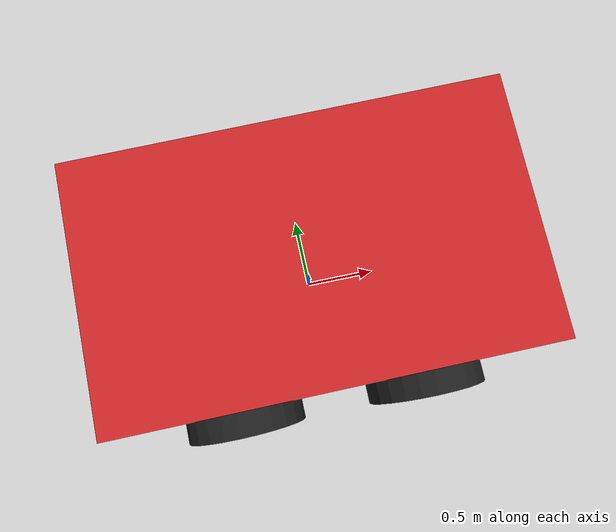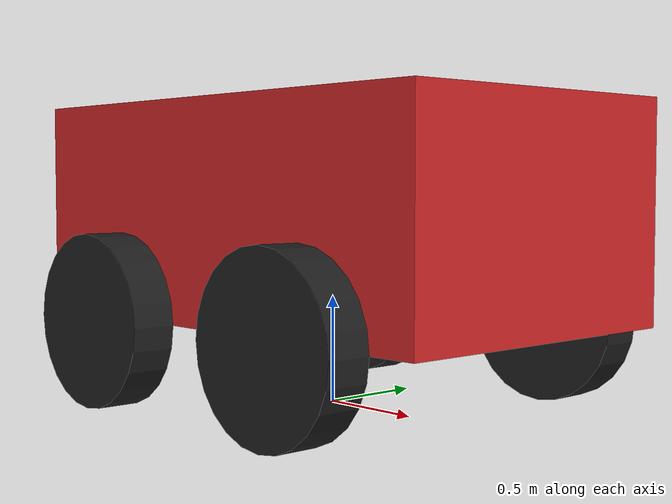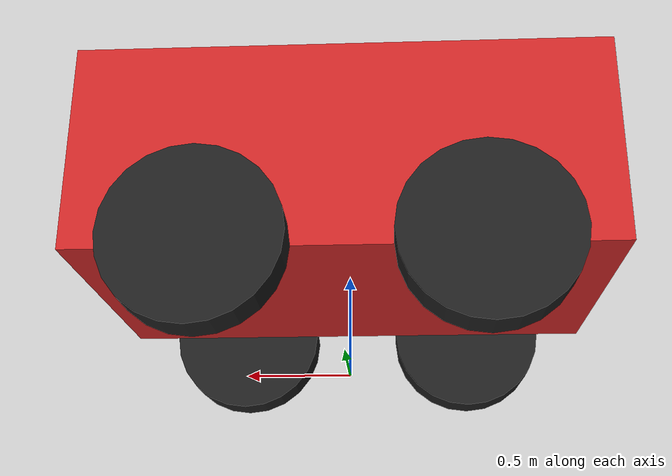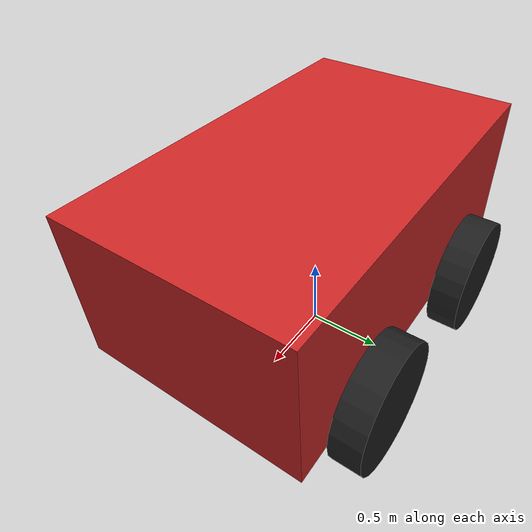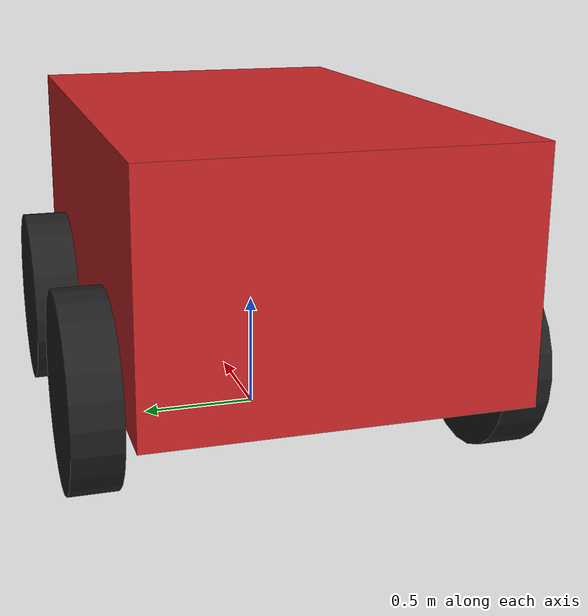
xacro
<?xml version="1.0"?>
<robot xmlns:xacro="http://www.ros.org/wiki/xacro">

    <xacro:property name="base_length"  value="2.5"/>
    <xacro:property name="base_width"  value="1.5"/>
    <xacro:property name="base_height"  value="1"/>

    <xacro:property name="wheel_radius"  value="0.4"/>
    <xacro:property name="wheel_length"  value="0.20"/>

    <xacro:property name="gps_length" value="0.1"/>
    <xacro:property name="gps_width" value="0.1"/>
    <xacro:property name="gps_height" value="0.05"/>

    <xacro:property name="dif_length" value="0.05"/>
    <xacro:property name="dif_radius" value="0.02"/>

    <link name="base_footprint" />

    <link name="base_link">
        <visual>
            <geometry>
                <box size="${base_length} ${base_width} ${base_height}" />
            </geometry>
            <origin xyz="0 0 ${base_height / 2.0}" rpy="0 0 0" />
            <material name="red" />
        </visual>
        <collision>
            <geometry>
                <box size="${base_length} ${base_width} ${base_height}"/>
            </geometry>
            <origin xyz="0 0 ${base_height / 2.0}" rpy="0 0 0" />
        </collision>
        <xacro:box_inertia m="5" l="${base_height}" w="${base_length}" h="${base_width}"
                                xyz="0 0 ${base_height / 2.0}" rpy="0 0 0" />
    </link>

    <!-- SAĞ-SOL TEKER DİFERANSİYEL -->
    <xacro:macro name="dif_link" params="prefix">
        <link name="${prefix}_front_dif">
            <visual>
                <geometry>
                    <cylinder length="${dif_length}" radius="${dif_radius}"/>
                </geometry>
                <origin xyz= "0 0 0" rpy="0 0 0"/>
                <material name="black"/>
            </visual>
            <collision>
                <geometry>
                    <cylinder length="${dif_length}" radius="${dif_radius}"/>
                </geometry>
                <origin xyz= "0 0 0" rpy="0 0 0"/>
            </collision>
            <xacro:cylinder_inertia m="1" r="${2*dif_radius}" l="${2*dif_length}"
                            xyz="0 0 0" rpy="0 0 0" />
        </link>
    </xacro:macro>

    <xacro:dif_link prefix="right"/>
    <xacro:dif_link prefix="left"/>

    <xacro:macro name="wheel_link" params="prefix radius_ length_ z_offset">
        <link name="${prefix}_wheel_link">
            <visual>
                <geometry>
                    <cylinder radius="${radius_}" length="${length_}" />
                </geometry>
                <origin xyz="0 0 ${z_offset/2.0}" rpy="0 0 0" />
                <material name="black" />
            </visual>
            <collision>
                <geometry>
                    <cylinder radius="${radius_}" length="${length_}" />
                </geometry>
                <origin xyz="0 0 ${z_offset/2.0}" rpy="0 0 0" />
            </collision>
            <xacro:cylinder_inertia m="1.0" r="${2+radius_}" l="${2+length_}"
                    xyz="0 0 ${z_offset/2.0}" rpy="0 0 0" />
        </link>
    </xacro:macro>

    <xacro:wheel_link prefix="right_front" radius_="${wheel_radius}" length_="${wheel_length}"  z_offset="0"/>
    <xacro:wheel_link prefix="left_front" radius_="${wheel_radius}" length_="${wheel_length}" z_offset="0"/>

    <xacro:wheel_link prefix="right_back" radius_="${wheel_radius}" length_="${wheel_length}"  z_offset="${wheel_length}"/>
    <xacro:wheel_link prefix="left_back" radius_="${wheel_radius}" length_="${wheel_length}" z_offset="${-wheel_length}"/>

    <joint name="base_joint" type="fixed">
        <parent link="base_footprint" />
        <child link="base_link" />
        <origin xyz="0 0 ${wheel_radius}" rpy="0 0 0"/>
    </joint>

    <joint name="left_front_dif_joint" type="revolute">
        <parent link="base_link" />
        <child link="left_front_dif" />
        <origin xyz="${base_length / 4.0} ${(base_width/2.0) + (wheel_length/2.0)} 0" rpy="${pi/2.0} 0 0" />
        <axis xyz="0 1 0" />
        <limit effort="100" velocity="1" lower="-1" upper="1"/>
        <dynamics damping="0.0" friction="0.0"/>
    </joint>

    <joint name="right_front_dif_joint" type="revolute">
        <parent link="base_link" />
        <child link="right_front_dif" />
        <origin xyz="${base_length / 4.0} ${-((base_width/2.0) + (wheel_length/2.0))} 0" rpy="${pi/2.0} 0 0" />
        <axis xyz="0 1 0" />
        <limit effort="100" velocity="1" lower="-1" upper="1"/>
        <dynamics damping="0.0" friction="0.0"/>
    </joint>

    <joint name="left_back_wheel_joint" type="continuous">
        <parent link="base_link" />
        <child link="left_back_wheel_link" />
        <origin xyz="${-base_length / 4.0} ${base_width/2.0} 0" rpy="${pi/2.0} 0 0" />
        <axis xyz="0 0 -1" />
    </joint>

    <joint name="right_back_wheel_joint" type="continuous">
        <parent link="base_link" />
        <child link="right_back_wheel_link" />
        <origin xyz="${-base_length / 4.0} ${-base_width/2.0} 0" rpy="${pi/2.0} 0 0" />
        <axis xyz="0 0 -1" />
    </joint>

    <joint name="left_front_dif_wheel_joint" type="continuous">
        <parent link="left_front_dif" />
        <child link="left_front_wheel_link"/>
        <origin xyz="0 0 0" rpy="0 0 0"/>
        <axis xyz="0 0 -1" />
        <dynamics damping="0.0" friction="0.0"/>
        <limit effort="100" velocity="100"/>
    </joint>

    <joint name="right_front_dif_wheel_joint" type="continuous">
        <parent link="right_front_dif" />
        <child link="right_front_wheel_link"/>
        <origin xyz="0 0 0" rpy="0 0 0"/>
        <axis xyz="0 0 -1" />
        <dynamics damping="0.0" friction="0.0"/>
        <limit effort="100" velocity="100"/>
    </joint>

</robot>
